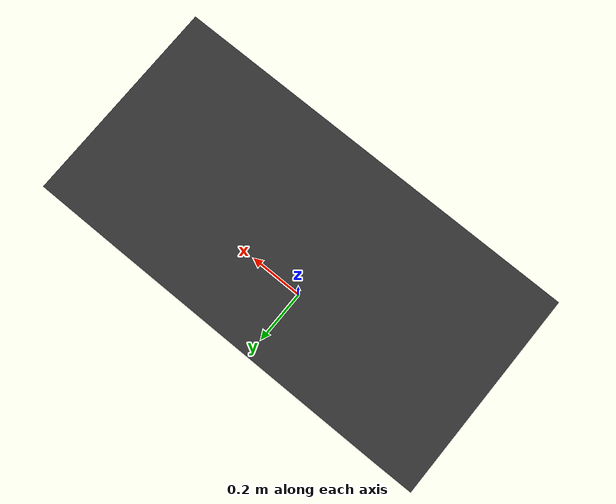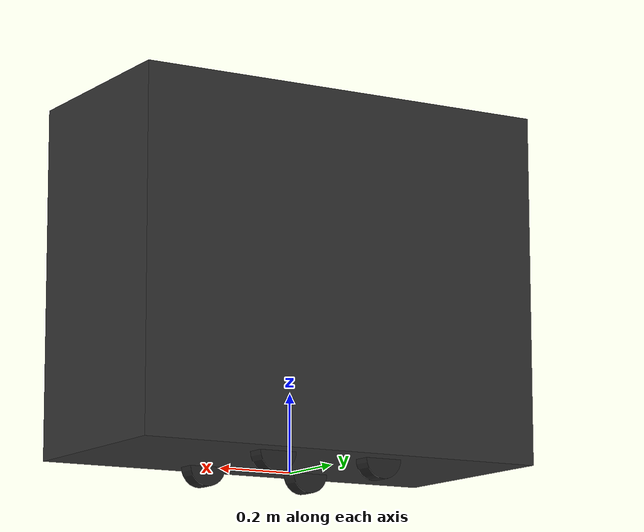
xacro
<?xml version="1.0"?>
<!-- Basic mecanum drive mobile base -->
<robot xmlns:xacro="http://www.ros.org/wiki/xacro" name="mecanumdrive_robot">
    <xacro:arg name="prefix" default="" />
    <xacro:arg name="use_mock_hardware" default="false" />

    <xacro:include filename="$(find cmeresearch_description)/urdf/cmexaiii/cmexaiii_description.urdf.xacro" />

    <!-- Import Rviz colors -->
    <xacro:include filename="$(find cmeresearch_description)/urdf/materials.xacro" />

    <!-- Import mecanum drive ros2_control description -->
    <xacro:include filename="$(find cmeresearch_description)/urdf/cmexaiii/cmexaiii_mecanum.ros2_control.xacro" />

    <xacro:cmexaiii prefix="$(arg prefix)" />

    <xacro:cmexaiii_ros2_control
            name="CMEXA" prefix="$(arg prefix)" use_mock_hardware="$(arg use_mock_hardware)"/>

</robot>

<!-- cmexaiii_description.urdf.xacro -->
<robot xmlns:xacro="http://www.ros.org/wiki/xacro">

  <xacro:macro name="cmexaiii" params="prefix">

  <!-- Robot constants and properties -->
  <xacro:include filename="$(find cmeresearch_description)/urdf/cmexaiii/cmexaiii_properties.urdf.xacro" />

  <xacro:property name="z_offset" value="-${chassis_height/2}" /> <!-- Space btw top of beam and the each joint -->
  <xacro:property name="wheel_mass" value="0.3"/>
  <!-- Base Link -->
  <link name="${prefix}base_link"></link>

  <joint name="base_link_joint" type="fixed">
    <origin xyz="0 0 ${wheel_radius/2}" rpy="0 0 0" />
    <parent link="${prefix}base_link"/>
    <child link="${prefix}chassis_link" />
  </joint>

  <link name="${prefix}chassis_link">
    <visual>
      <origin xyz="${chassis_length/2} ${-chassis_width/2} 0" rpy="0 0 ${PI/2}" />
      <geometry>
        <mesh filename="package://cmeresearch_description/meshes/cmexaiii/cmexaiii-base.stl" scale="0.001 0.001 0.001"/>
      </geometry>
      <material name="dark_grey" />
    </visual>
    <collision>
      <origin xyz="${chassis_length/2} ${chassis_width/2} ${chassis_height/2}"/>
      <geometry>
        <box size="${chassis_length} ${chassis_width} ${chassis_height}"/>
      </geometry>
    </collision>
    <inertial>
      <!-- Center of mass -->
      <origin xyz="0.012  0.002 0.067" rpy="0 0 0"/>
      <mass value="16.523"/>
      <!-- Moments of inertia: ( chassis without wheels ) -->
      <inertia
        ixx="0.3136" ixy="-0.0008" ixz="0.0164"
        iyy="0.3922" iyz="-0.0009"
        izz="0.4485"/>
      </inertial>
  </link>

    <!-- Front left wheel -->
    <joint name="${prefix}front_left_wheel_joint" type="continuous">
      <parent link="${prefix}base_link"/>
      <child link="${prefix}front_left_wheel"/>
      <origin xyz="${wheelbase/2} ${track/2} ${wheel_radius/2}" rpy="0 0 0"/>
      <axis xyz="0 1 0"/>
      <dynamics damping="0.2"/>
      <limit effort="100" velocity="1.0"/>
    </joint>

    <!-- front left wheel Link -->
    <link name="${prefix}front_left_wheel">
      <collision>
        <origin xyz="0 0 0" rpy="${PI/2} 0 0"/>
        <geometry>
          <cylinder length="${wheel_width}" radius="${wheel_radius}"/>
        </geometry>
      </collision>

      <visual>
        <origin xyz="0 0 0" rpy="${PI/2} 0 0"/>
        <geometry>
          <cylinder length="${wheel_width}" radius="${wheel_radius}"/>
        </geometry>
        <material name="black"/>
      </visual>

      <inertial>
        <origin xyz="0 0 0" rpy="${PI/2} 0 0"/>
        <mass value="${wheel_mass}"/>
        <inertia
                ixx="${wheel_mass / 12.0 * (3*wheel_radius*wheel_radius + wheel_width*wheel_width)}" ixy="0.0" ixz="0.0"
                iyy="${wheel_mass / 12.0 * (3*wheel_radius*wheel_radius + wheel_width*wheel_width)}" iyz="0.0"
                izz="${wheel_mass / 2.0 * wheel_radius*wheel_radius}"/>
      </inertial>
    </link>

    <!-- Front right wheel -->
    <joint name="${prefix}front_right_wheel_joint" type="continuous">
      <parent link="${prefix}base_link"/>
      <child link="${prefix}front_right_wheel"/>
      <origin xyz="${-wheelbase/2} ${track/2} ${wheel_radius/2}" rpy="0 0 0"/>
      <axis xyz="0 1 0"/>
      <dynamics damping="0.2"/>
      <limit effort="100" velocity="1.0"/>
    </joint>

    <!-- front right wheel Link -->
    <link name="${prefix}front_right_wheel">
      <collision>
        <origin xyz="0 0 0" rpy="${PI/2} 0 0"/>
        <geometry>
          <cylinder length="${wheel_width}" radius="${wheel_radius}"/>
        </geometry>
      </collision>

      <visual>
        <origin xyz="0 0 0" rpy="${PI/2} 0 0"/>
        <geometry>
          <cylinder length="${wheel_width}" radius="${wheel_radius}"/>
        </geometry>
        <material name="black"/>
      </visual>

      <inertial>
        <origin xyz="0 0 0" rpy="${PI/2} 0 0"/>
        <mass value="${wheel_mass}"/>
        <inertia
                ixx="${wheel_mass / 12.0 * (3*wheel_radius*wheel_radius + wheel_width*wheel_width)}" ixy="0.0" ixz="0.0"
                iyy="${wheel_mass / 12.0 * (3*wheel_radius*wheel_radius + wheel_width*wheel_width)}" iyz="0.0"
                izz="${wheel_mass / 2.0 * wheel_radius*wheel_radius}"/>
      </inertial>
    </link>

    <!-- rear left wheel -->
    <joint name="${prefix}rear_left_wheel_joint" type="continuous">
      <parent link="${prefix}base_link"/>
      <child link="${prefix}rear_left_wheel"/>
      <origin xyz="${wheelbase/2} ${-track/2} ${wheel_radius/2}" rpy="0 0 0"/>
      <axis xyz="0 1 0"/>
      <dynamics damping="0.2"/>
      <limit effort="100" velocity="1.0"/>
    </joint>

    <!-- rear left wheel Link -->
    <link name="${prefix}rear_left_wheel">
      <collision>
        <origin xyz="0 0 0" rpy="${PI/2} 0 0"/>
        <geometry>
          <cylinder length="${wheel_width}" radius="${wheel_radius}"/>
        </geometry>
      </collision>

      <visual>
        <origin xyz="0 0 0" rpy="${PI/2} 0 0"/>
        <geometry>
          <cylinder length="${wheel_width}" radius="${wheel_radius}"/>
        </geometry>
        <material name="black"/>
      </visual>

      <inertial>
        <origin xyz="0 0 0" rpy="${PI/2} 0 0"/>
        <mass value="${wheel_mass}"/>
        <inertia
                ixx="${wheel_mass / 12.0 * (3*wheel_radius*wheel_radius + wheel_width*wheel_width)}" ixy="0.0" ixz="0.0"
                iyy="${wheel_mass / 12.0 * (3*wheel_radius*wheel_radius + wheel_width*wheel_width)}" iyz="0.0"
                izz="${wheel_mass / 2.0 * wheel_radius*wheel_radius}"/>
      </inertial>
    </link>

    <!-- rear right wheel -->
    <joint name="${prefix}rear_right_wheel_joint" type="continuous">
      <parent link="${prefix}base_link"/>
      <child link="${prefix}rear_right_wheel"/>
      <origin xyz="${-wheelbase/2} ${-track/2} ${wheel_radius/2}" rpy="0 0 0"/>
      <axis xyz="0 1 0"/>
      <dynamics damping="0.2"/>
      <limit effort="100" velocity="1.0"/>
    </joint>

    <!-- rear right wheel Link -->
    <link name="${prefix}rear_right_wheel">
      <collision>
        <origin xyz="0 0 0" rpy="${PI/2} 0 0"/>
        <geometry>
          <cylinder length="${wheel_width}" radius="${wheel_radius}"/>
        </geometry>
      </collision>

      <visual>
        <origin xyz="0 0 0" rpy="${PI/2} 0 0"/>
        <geometry>
          <cylinder length="${wheel_width}" radius="${wheel_radius}"/>
        </geometry>
        <material name="black"/>
      </visual>

      <inertial>
        <origin xyz="0 0 0" rpy="${PI/2} 0 0"/>
        <mass value="${wheel_mass}"/>
        <inertia
                ixx="${wheel_mass / 12.0 * (3*wheel_radius*wheel_radius + wheel_width*wheel_width)}" ixy="0.0" ixz="0.0"
                iyy="${wheel_mass / 12.0 * (3*wheel_radius*wheel_radius + wheel_width*wheel_width)}" iyz="0.0"
                izz="${wheel_mass / 2.0 * wheel_radius*wheel_radius}"/>
      </inertial>
    </link>

  </xacro:macro>
</robot>

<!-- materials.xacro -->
<robot>
  <material name="dark_grey"><color rgba="0.2 0.2 0.2 1.0" /></material>
  <material name="light_grey"><color rgba="0.4 0.4 0.4 1.0" /></material>
  <material name="yellow"><color rgba="0.8 0.8 0.0 1.0" /></material>
  <material name="black"><color rgba="0.15 0.15 0.15 1.0" /></material>
  <material name="green"><color rgba="0.25 0.75 0.25 1.0" /></material>
  <material name="orange"><color rgba="0.92 0.33 0.02 1.0" /></material>
</robot>

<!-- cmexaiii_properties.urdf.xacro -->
<robot xmlns:xacro="http://www.ros.org/wiki/xacro">

  <xacro:property name="PI" value="3.1415926535897931" />

  <!-- wheelbase = distance between wheel axis (x-direction)
       example: distance between wheel_front_right and wheel_rear_right-->
  <xacro:property name="wheelbase" value="0.300" />
  <!-- track = distance between wheels (y-direction)
       example: distance between wheel_front_right and wheel_front_left -->
  <xacro:property name="track" value="0.354" />
  <!-- vertical offset means height -->
  <xacro:property name="wheel_vertical_offset" value="0.01" />
  <xacro:property name="footprint_vertical_offset" value="0.025" />

  <xacro:property name="wheel_radius" value="0.050" />
  <xacro:property name="wheel_width" value="0.050" />

  <xacro:property name="chassis_length" value="1.100" />
  <xacro:property name="chassis_width" value="0.550" />
  <xacro:property name="chassis_height" value="0.950" />
  <xacro:property name="chassis_mass" value="20.0" /> <!-- correct this later -->

  <xacro:property name="dummy_inertia" value="1e-09"/>

  <xacro:property name="mount_spacing" value="0.120" />

</robot>
